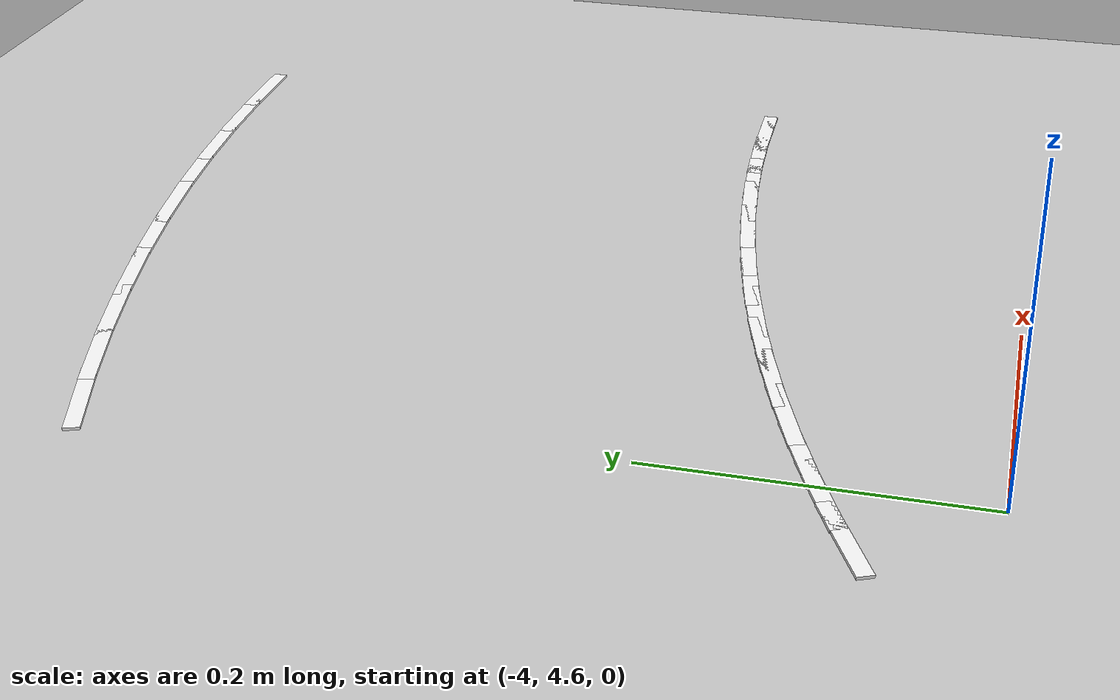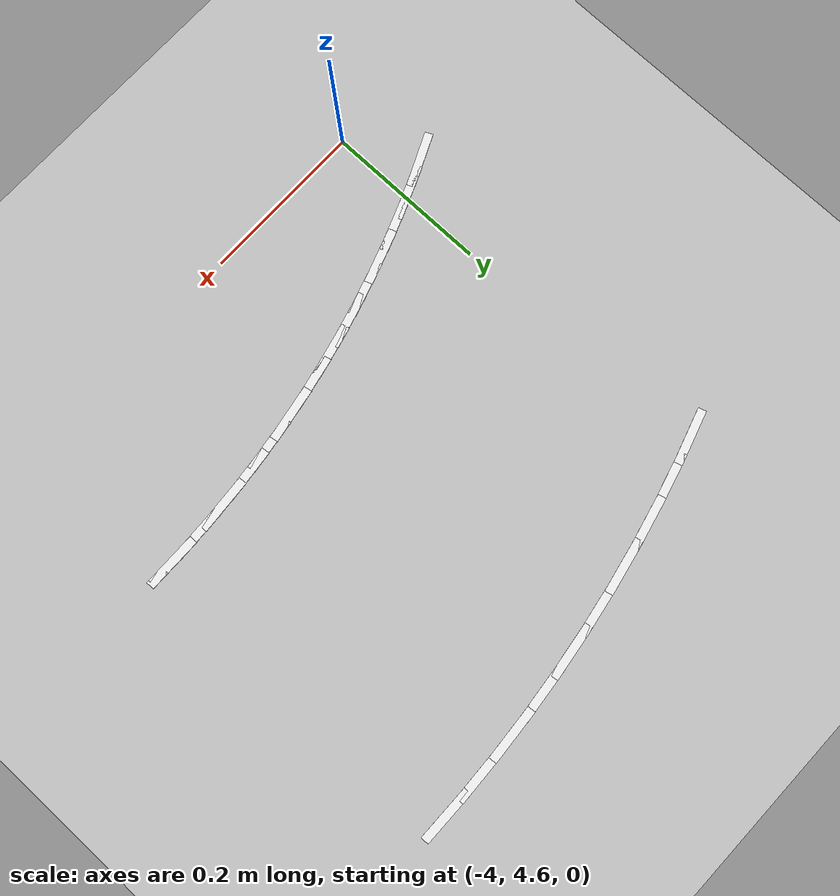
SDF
<sdf version="1.7">
 <world name="default">
  <model name="ground_plane">
   <static>1</static>
   <link name="link">
    <collision name="collision">
     <geometry><plane><normal>0 0 1</normal><size>100 100</size></plane></geometry>
     <surface>
      <contact><collide_bitmask>65535</collide_bitmask></contact>
      <friction><ode><mu>100</mu><mu2>50</mu2></ode></friction>
     </surface>
    </collision>
    <visual name="visual">
     <cast_shadows>0</cast_shadows>
     <geometry><plane><normal>0 0 1</normal><size>100 100</size></plane></geometry>
     <material>
      <script><uri>file://media/materials/scripts/gazebo.material</uri><name>Gazebo/Grey</name></script>
     </material>
    </visual>
   </link>
  </model>
  <model name="lane_line_right_249">
   <static>1</static>
   <link name="link">
    <pose>0 0 -0.004 0 -0 0</pose>
    <visual name="visual">
     <geometry><box><size>0.02 0.01 0.01</size></box></geometry>
     <material><ambient>1 1 1 1</ambient><diffuse>1 1 1 1</diffuse></material>
    </visual>
    <collision name="collision"><geometry><box><size>0.02 0.01 0.01</size></box></geometry></collision>
   </link>
   <pose>-3.5 4.8 0 0 -0 0</pose>
  </model>
  <model name="lane_line_left_250">
   <static>1</static>
   <link name="link">
    <pose>0 0 -0.004 0 -0 0</pose>
    <visual name="visual">
     <geometry><box><size>0.0681 0.01 0.01</size></box></geometry>
     <material><ambient>1 1 1 1</ambient><diffuse>1 1 1 1</diffuse></material>
    </visual>
    <collision name="collision"><geometry><box><size>0.0681 0.01 0.01</size></box></geometry></collision>
   </link>
   <pose>-3.52083 4.79964 0 0 0 -3.12556</pose>
  </model>
  <model name="lane_line_right_250">
   <static>1</static>
   <link name="link">
    <pose>0 0 -0.004 0 -0 0</pose>
    <visual name="visual">
     <geometry><box><size>0.0681 0.01 0.01</size></box></geometry>
     <material><ambient>1 1 1 1</ambient><diffuse>1 1 1 1</diffuse></material>
    </visual>
    <collision name="collision"><geometry><box><size>0.0681 0.01 0.01</size></box></geometry></collision>
   </link>
   <pose>-3.52724 5.19959 0 0 0 -3.12556</pose>
  </model>
  <model name="lane_line_left_251">
   <static>1</static>
   <link name="link">
    <pose>0 0 -0.004 0 -0 0</pose>
    <visual name="visual">
     <geometry><box><size>0.0681 0.01 0.01</size></box></geometry>
     <material><ambient>1 1 1 1</ambient><diffuse>1 1 1 1</diffuse></material>
    </visual>
    <collision name="collision"><geometry><box><size>0.0681 0.01 0.01</size></box></geometry></collision>
   </link>
   <pose>-3.56248 4.7983 0 0 0 -3.09351</pose>
  </model>
  <model name="lane_line_right_251">
   <static>1</static>
   <link name="link">
    <pose>0 0 -0.004 0 -0 0</pose>
    <visual name="visual">
     <geometry><box><size>0.0681 0.01 0.01</size></box></geometry>
     <material><ambient>1 1 1 1</ambient><diffuse>1 1 1 1</diffuse></material>
    </visual>
    <collision name="collision"><geometry><box><size>0.0681 0.01 0.01</size></box></geometry></collision>
   </link>
   <pose>-3.5817 5.19784 0 0 0 -3.09351</pose>
  </model>
  <model name="lane_line_left_252">
   <static>1</static>
   <link name="link">
    <pose>0 0 -0.004 0 -0 0</pose>
    <visual name="visual">
     <geometry><box><size>0.0681 0.01 0.01</size></box></geometry>
     <material><ambient>1 1 1 1</ambient><diffuse>1 1 1 1</diffuse></material>
    </visual>
    <collision name="collision"><geometry><box><size>0.0681 0.01 0.01</size></box></geometry></collision>
   </link>
   <pose>-3.60406 4.79564 0 0 0 -3.06145</pose>
  </model>
  <model name="lane_line_right_252">
   <static>1</static>
   <link name="link">
    <pose>0 0 -0.004 0 -0 0</pose>
    <visual name="visual">
     <geometry><box><size>0.0681 0.01 0.01</size></box></geometry>
     <material><ambient>1 1 1 1</ambient><diffuse>1 1 1 1</diffuse></material>
    </visual>
    <collision name="collision"><geometry><box><size>0.0681 0.01 0.01</size></box></geometry></collision>
   </link>
   <pose>-3.63608 5.19435 0 0 0 -3.06145</pose>
  </model>
  <model name="lane_line_left_253">
   <static>1</static>
   <link name="link">
    <pose>0 0 -0.004 0 -0 0</pose>
    <visual name="visual">
     <geometry><box><size>0.0681 0.01 0.01</size></box></geometry>
     <material><ambient>1 1 1 1</ambient><diffuse>1 1 1 1</diffuse></material>
    </visual>
    <collision name="collision"><geometry><box><size>0.0681 0.01 0.01</size></box></geometry></collision>
   </link>
   <pose>-3.64553 4.79163 0 0 0 -3.02939</pose>
  </model>
  <model name="lane_line_right_253">
   <static>1</static>
   <link name="link">
    <pose>0 0 -0.004 0 -0 0</pose>
    <visual name="visual">
     <geometry><box><size>0.0681 0.01 0.01</size></box></geometry>
     <material><ambient>1 1 1 1</ambient><diffuse>1 1 1 1</diffuse></material>
    </visual>
    <collision name="collision"><geometry><box><size>0.0681 0.01 0.01</size></box></geometry></collision>
   </link>
   <pose>-3.69032 5.18912 0 0 0 -3.02939</pose>
  </model>
  <model name="lane_line_left_254">
   <static>1</static>
   <link name="link">
    <pose>0 0 -0.004 0 -0 0</pose>
    <visual name="visual">
     <geometry><box><size>0.0681 0.01 0.01</size></box></geometry>
     <material><ambient>1 1 1 1</ambient><diffuse>1 1 1 1</diffuse></material>
    </visual>
    <collision name="collision"><geometry><box><size>0.0681 0.01 0.01</size></box></geometry></collision>
   </link>
   <pose>-3.68686 4.78631 0 0 0 -2.99734</pose>
  </model>
  <model name="lane_line_right_254">
   <static>1</static>
   <link name="link">
    <pose>0 0 -0.004 0 -0 0</pose>
    <visual name="visual">
     <geometry><box><size>0.0681 0.01 0.01</size></box></geometry>
     <material><ambient>1 1 1 1</ambient><diffuse>1 1 1 1</diffuse></material>
    </visual>
    <collision name="collision"><geometry><box><size>0.0681 0.01 0.01</size></box></geometry></collision>
   </link>
   <pose>-3.74436 5.18215 0 0 0 -2.99734</pose>
  </model>
  <model name="lane_line_left_255">
   <static>1</static>
   <link name="link">
    <pose>0 0 -0.004 0 -0 0</pose>
    <visual name="visual">
     <geometry><box><size>0.0681 0.01 0.01</size></box></geometry>
     <material><ambient>1 1 1 1</ambient><diffuse>1 1 1 1</diffuse></material>
    </visual>
    <collision name="collision"><geometry><box><size>0.0681 0.01 0.01</size></box></geometry></collision>
   </link>
   <pose>-3.72799 4.77966 0 0 0 -2.96528</pose>
  </model>
  <model name="lane_line_right_255">
   <static>1</static>
   <link name="link">
    <pose>0 0 -0.004 0 -0 0</pose>
    <visual name="visual">
     <geometry><box><size>0.0681 0.01 0.01</size></box></geometry>
     <material><ambient>1 1 1 1</ambient><diffuse>1 1 1 1</diffuse></material>
    </visual>
    <collision name="collision"><geometry><box><size>0.0681 0.01 0.01</size></box></geometry></collision>
   </link>
   <pose>-3.79815 5.17346 0 0 0 -2.96528</pose>
  </model>
  <model name="lane_line_left_256">
   <static>1</static>
   <link name="link">
    <pose>0 0 -0.004 0 -0 0</pose>
    <visual name="visual">
     <geometry><box><size>0.0681 0.01 0.01</size></box></geometry>
     <material><ambient>1 1 1 1</ambient><diffuse>1 1 1 1</diffuse></material>
    </visual>
    <collision name="collision"><geometry><box><size>0.0681 0.01 0.01</size></box></geometry></collision>
   </link>
   <pose>-3.76889 4.77169 0 0 0 -2.93322</pose>
  </model>
  <model name="lane_line_right_256">
   <static>1</static>
   <link name="link">
    <pose>0 0 -0.004 0 -0 0</pose>
    <visual name="visual">
     <geometry><box><size>0.0681 0.01 0.01</size></box></geometry>
     <material><ambient>1 1 1 1</ambient><diffuse>1 1 1 1</diffuse></material>
    </visual>
    <collision name="collision"><geometry><box><size>0.0681 0.01 0.01</size></box></geometry></collision>
   </link>
   <pose>-3.85163 5.16304 0 0 0 -2.93322</pose>
  </model>
  <model name="lane_line_left_257">
   <static>1</static>
   <link name="link">
    <pose>0 0 -0.004 0 -0 0</pose>
    <visual name="visual">
     <geometry><box><size>0.0681 0.01 0.01</size></box></geometry>
     <material><ambient>1 1 1 1</ambient><diffuse>1 1 1 1</diffuse></material>
    </visual>
    <collision name="collision"><geometry><box><size>0.0681 0.01 0.01</size></box></geometry></collision>
   </link>
   <pose>-3.80951 4.76242 0 0 0 -2.90116</pose>
  </model>
  <model name="lane_line_right_257">
   <static>1</static>
   <link name="link">
    <pose>0 0 -0.004 0 -0 0</pose>
    <visual name="visual">
     <geometry><box><size>0.0681 0.01 0.01</size></box></geometry>
     <material><ambient>1 1 1 1</ambient><diffuse>1 1 1 1</diffuse></material>
    </visual>
    <collision name="collision"><geometry><box><size>0.0681 0.01 0.01</size></box></geometry></collision>
   </link>
   <pose>-3.90476 5.15091 0 0 0 -2.90116</pose>
  </model>
  <model name="lane_line_left_258">
   <static>1</static>
   <link name="link">
    <pose>0 0 -0.004 0 -0 0</pose>
    <visual name="visual">
     <geometry><box><size>0.0681 0.01 0.01</size></box></geometry>
     <material><ambient>1 1 1 1</ambient><diffuse>1 1 1 1</diffuse></material>
    </visual>
    <collision name="collision"><geometry><box><size>0.0681 0.01 0.01</size></box></geometry></collision>
   </link>
   <pose>-3.84981 4.75185 0 0 0 -2.86911</pose>
  </model>
  <model name="lane_line_right_258">
   <static>1</static>
   <link name="link">
    <pose>0 0 -0.004 0 -0 0</pose>
    <visual name="visual">
     <geometry><box><size>0.0681 0.01 0.01</size></box></geometry>
     <material><ambient>1 1 1 1</ambient><diffuse>1 1 1 1</diffuse></material>
    </visual>
    <collision name="collision"><geometry><box><size>0.0681 0.01 0.01</size></box></geometry></collision>
   </link>
   <pose>-3.95746 5.13709 0 0 0 -2.86911</pose>
  </model>
  <model name="lane_line_left_259">
   <static>1</static>
   <link name="link">
    <pose>0 0 -0.004 0 -0 0</pose>
    <visual name="visual">
     <geometry><box><size>0.0681 0.01 0.01</size></box></geometry>
     <material><ambient>1 1 1 1</ambient><diffuse>1 1 1 1</diffuse></material>
    </visual>
    <collision name="collision"><geometry><box><size>0.0681 0.01 0.01</size></box></geometry></collision>
   </link>
   <pose>-3.88976 4.74 0 0 0 -2.83705</pose>
  </model>
  <model name="lane_line_right_259">
   <static>1</static>
   <link name="link">
    <pose>0 0 -0.004 0 -0 0</pose>
    <visual name="visual">
     <geometry><box><size>0.0681 0.01 0.01</size></box></geometry>
     <material><ambient>1 1 1 1</ambient><diffuse>1 1 1 1</diffuse></material>
    </visual>
    <collision name="collision"><geometry><box><size>0.0681 0.01 0.01</size></box></geometry></collision>
   </link>
   <pose>-4.0097 5.12159 0 0 0 -2.83705</pose>
  </model>
  <model name="lane_line_left_260">
   <static>1</static>
   <link name="link">
    <pose>0 0 -0.004 0 -0 0</pose>
    <visual name="visual">
     <geometry><box><size>0.0681 0.01 0.01</size></box></geometry>
     <material><ambient>1 1 1 1</ambient><diffuse>1 1 1 1</diffuse></material>
    </visual>
    <collision name="collision"><geometry><box><size>0.0681 0.01 0.01</size></box></geometry></collision>
   </link>
   <pose>-3.9293 4.72687 0 0 0 -2.80499</pose>
  </model>
  <model name="lane_line_left_261">
   <static>1</static>
   <link name="link">
    <pose>0 0 -0.004 0 -0 0</pose>
    <visual name="visual">
     <geometry><box><size>0.0681 0.01 0.01</size></box></geometry>
     <material><ambient>1 1 1 1</ambient><diffuse>1 1 1 1</diffuse></material>
    </visual>
    <collision name="collision"><geometry><box><size>0.0681 0.01 0.01</size></box></geometry></collision>
   </link>
   <pose>-3.9684 4.71248 0 0 0 -2.77294</pose>
  </model>
  <model name="lane_line_left_262">
   <static>1</static>
   <link name="link">
    <pose>0 0 -0.004 0 -0 0</pose>
    <visual name="visual">
     <geometry><box><size>0.0681 0.01 0.01</size></box></geometry>
     <material><ambient>1 1 1 1</ambient><diffuse>1 1 1 1</diffuse></material>
    </visual>
    <collision name="collision"><geometry><box><size>0.0681 0.01 0.01</size></box></geometry></collision>
   </link>
   <pose>-4.00702 4.69684 0 0 0 -2.74088</pose>
  </model>
  <model name="lane_line_left_263">
   <static>1</static>
   <link name="link">
    <pose>0 0 -0.004 0 -0 0</pose>
    <visual name="visual">
     <geometry><box><size>0.0681 0.01 0.01</size></box></geometry>
     <material><ambient>1 1 1 1</ambient><diffuse>1 1 1 1</diffuse></material>
    </visual>
    <collision name="collision"><geometry><box><size>0.0681 0.01 0.01</size></box></geometry></collision>
   </link>
   <pose>-4.04512 4.67997 0 0 0 -2.70882</pose>
  </model>
 </world>
</sdf>
